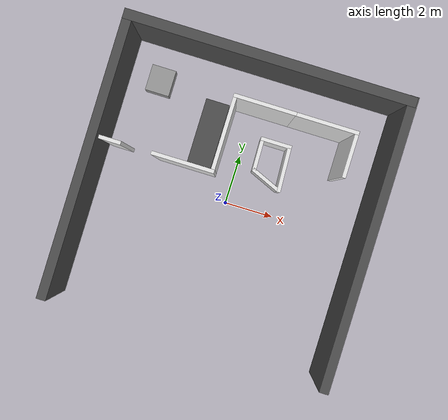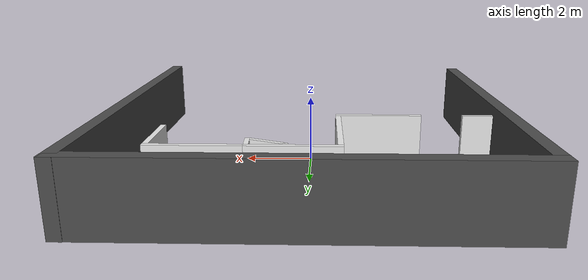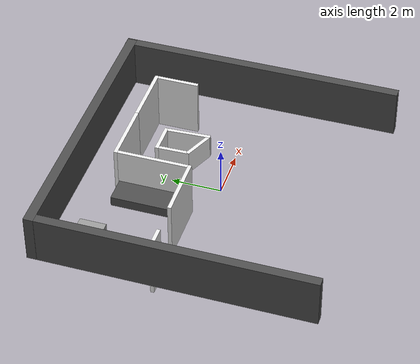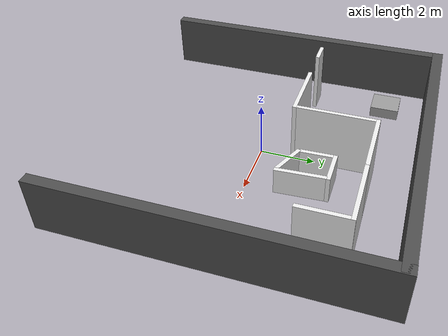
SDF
<sdf version="1.6">
 <world name="default">
  <model name="Obstacles">
   <link name="Wall_11">
    <pose>-2 1 0 0 -0 0</pose>
    <inertial>
     <mass>2.43558</mass>
     <inertia><ixx>8.44174</ixx><ixy>0</ixy><ixz>0</ixz><iyy>8.44174</iyy><iyz>0</iyz><izz>2.43558</izz></inertia>
    </inertial>
    <visual name="Wall_11_Visual">
     <pose>0 0 0.5 0 -0 0</pose>
     <geometry><box><size>2.5 0.15 2.43558</size></box></geometry>
     <material>
      <script><uri>file://media/materials/scripts/gazebo.material</uri><name>Gazebo/White</name></script>
      <ambient>1 1 1 1</ambient>
      <diffuse>1 1 1 1</diffuse>
      <specular>0 0 0 1</specular>
      <emissive>0 0 0 1</emissive>
      <shader type="vertex"><normal_map>__default__</normal_map></shader>
     </material>
     <meta><layer>0</layer></meta>
    </visual>
    <collision name="Wall_11_Collision">
     <pose>0 0 0.5 0 -0 0</pose>
     <geometry><box><size>2.5 0.15 2.43558</size></box></geometry>
     <surface>
      <friction>
       <ode><mu>1</mu><mu2>1</mu2><fdir1>0 0 0</fdir1><slip1>0</slip1><slip2>0</slip2></ode>
       <torsional>
        <coefficient>1</coefficient>
        <patch_radius>0</patch_radius>
        <surface_radius>0</surface_radius>
        <use_patch_radius>1</use_patch_radius>
        <ode><slip>0</slip></ode>
       </torsional>
      </friction>
      <bounce><restitution_coefficient>0</restitution_coefficient><threshold>1e+06</threshold></bounce>
      <contact>
       <collide_without_contact>0</collide_without_contact>
       <collide_without_contact_bitmask>1</collide_without_contact_bitmask>
       <collide_bitmask>1</collide_bitmask>
       <ode>
        <soft_cfm>0</soft_cfm>
        <soft_erp>0.2</soft_erp>
        <kp>1e+13</kp>
        <kd>1</kd>
        <max_vel>0.01</max_vel>
        <min_depth>0</min_depth>
       </ode>
       <bullet>
        <split_impulse>1</split_impulse>
        <split_impulse_penetration_threshold>-0.01</split_impulse_penetration_threshold>
        <soft_cfm>0</soft_cfm>
        <soft_erp>0.2</soft_erp>
        <kp>1e+13</kp>
        <kd>1</kd>
       </bullet>
      </contact>
     </surface>
    </collision>
   </link>
   <link name="Wall_11_clone">
    <pose>0.349144 4 0 0 -0 0</pose>
    <inertial>
     <mass>2.43558</mass>
     <inertia><ixx>8.44174</ixx><ixy>0</ixy><ixz>0</ixz><iyy>8.44174</iyy><iyz>0</iyz><izz>2.43558</izz></inertia>
    </inertial>
    <visual name="Wall_11_Visual">
     <pose>0 0 0.5 0 -0 0</pose>
     <geometry><box><size>2.5 0.15 2.43558</size></box></geometry>
     <material>
      <script><uri>file://media/materials/scripts/gazebo.material</uri><name>Gazebo/White</name></script>
      <ambient>1 1 1 1</ambient>
      <diffuse>1 1 1 1</diffuse>
      <specular>0 0 0 1</specular>
      <emissive>0 0 0 1</emissive>
      <shader type="vertex"><normal_map>__default__</normal_map></shader>
     </material>
     <meta><layer>0</layer></meta>
    </visual>
    <collision name="Wall_11_Collision">
     <pose>0 0 0.5 0 -0 0</pose>
     <geometry><box><size>2.5 0.15 2.43558</size></box></geometry>
     <surface>
      <friction>
       <ode><mu>1</mu><mu2>1</mu2><fdir1>0 0 0</fdir1><slip1>0</slip1><slip2>0</slip2></ode>
       <torsional>
        <coefficient>1</coefficient>
        <patch_radius>0</patch_radius>
        <surface_radius>0</surface_radius>
        <use_patch_radius>1</use_patch_radius>
        <ode><slip>0</slip></ode>
       </torsional>
      </friction>
      <bounce><restitution_coefficient>0</restitution_coefficient><threshold>1e+06</threshold></bounce>
      <contact>
       <collide_without_contact>0</collide_without_contact>
       <collide_without_contact_bitmask>1</collide_without_contact_bitmask>
       <collide_bitmask>1</collide_bitmask>
       <ode>
        <soft_cfm>0</soft_cfm>
        <soft_erp>0.2</soft_erp>
        <kp>1e+13</kp>
        <kd>1</kd>
        <max_vel>0.01</max_vel>
        <min_depth>0</min_depth>
       </ode>
       <bullet>
        <split_impulse>1</split_impulse>
        <split_impulse_penetration_threshold>-0.01</split_impulse_penetration_threshold>
        <soft_cfm>0</soft_cfm>
        <soft_erp>0.2</soft_erp>
        <kp>1e+13</kp>
        <kd>1</kd>
       </bullet>
      </contact>
     </surface>
    </collision>
   </link>
   <link name="Wall_11_clone_0">
    <pose>-0.826002 2.50053 0 0 0 -1.5708</pose>
    <inertial>
     <mass>2.78329</mass>
     <inertia><ixx>9.64467</ixx><ixy>0</ixy><ixz>0</ixz><iyy>10.0709</iyy><iyz>0</iyz><izz>3.20952</izz></inertia>
    </inertial>
    <visual name="Wall_11_Visual">
     <pose>0 0 0.5 0 -0 0</pose>
     <geometry><box><size>2.85731 0.15 2.43521</size></box></geometry>
     <material>
      <script><uri>file://media/materials/scripts/gazebo.material</uri><name>Gazebo/White</name></script>
      <ambient>1 1 1 1</ambient>
      <diffuse>1 1 1 1</diffuse>
      <specular>0 0 0 1</specular>
      <emissive>0 0 0 1</emissive>
      <shader type="vertex"><normal_map>__default__</normal_map></shader>
     </material>
     <meta><layer>0</layer></meta>
    </visual>
    <collision name="Wall_11_Collision">
     <pose>0 0 0.5 0 -0 0</pose>
     <geometry><box><size>2.85731 0.15 2.43521</size></box></geometry>
     <surface>
      <friction>
       <ode><mu>1</mu><mu2>1</mu2><fdir1>0 0 0</fdir1><slip1>0</slip1><slip2>0</slip2></ode>
       <torsional>
        <coefficient>1</coefficient>
        <patch_radius>0</patch_radius>
        <surface_radius>0</surface_radius>
        <use_patch_radius>1</use_patch_radius>
        <ode><slip>0</slip></ode>
       </torsional>
      </friction>
      <bounce><restitution_coefficient>0</restitution_coefficient><threshold>1e+06</threshold></bounce>
      <contact>
       <collide_without_contact>0</collide_without_contact>
       <collide_without_contact_bitmask>1</collide_without_contact_bitmask>
       <collide_bitmask>1</collide_bitmask>
       <ode>
        <soft_cfm>0</soft_cfm>
        <soft_erp>0.2</soft_erp>
        <kp>1e+13</kp>
        <kd>1</kd>
        <max_vel>0.01</max_vel>
        <min_depth>0</min_depth>
       </ode>
       <bullet>
        <split_impulse>1</split_impulse>
        <split_impulse_penetration_threshold>-0.01</split_impulse_penetration_threshold>
        <soft_cfm>0</soft_cfm>
        <soft_erp>0.2</soft_erp>
        <kp>1e+13</kp>
        <kd>1</kd>
       </bullet>
      </contact>
     </surface>
    </collision>
   </link>
   <link name="Wall_11_clone_0_clone">
    <pose>4 3.14359 0 0 0 -1.5708</pose>
    <inertial>
     <mass>1.80348</mass>
     <inertia><ixx>6.24942</ixx><ixy>0</ixy><ixz>0</ixz><iyy>5.84224</iyy><iyz>0</iyz><izz>1.3963</izz></inertia>
    </inertial>
    <visual name="Wall_11_Visual">
     <pose>0 0 0.5 0 -0 0</pose>
     <geometry><box><size>1.85143 0.15 2.43521</size></box></geometry>
     <material>
      <script><uri>file://media/materials/scripts/gazebo.material</uri><name>Gazebo/White</name></script>
      <ambient>1 1 1 1</ambient>
      <diffuse>1 1 1 1</diffuse>
      <specular>0 0 0 1</specular>
      <emissive>0 0 0 1</emissive>
      <shader type="vertex"><normal_map>__default__</normal_map></shader>
     </material>
     <meta><layer>0</layer></meta>
    </visual>
    <collision name="Wall_11_Collision">
     <pose>0 0 0.5 0 -0 0</pose>
     <geometry><box><size>1.85143 0.15 2.43521</size></box></geometry>
     <surface>
      <friction>
       <ode><mu>1</mu><mu2>1</mu2><fdir1>0 0 0</fdir1><slip1>0</slip1><slip2>0</slip2></ode>
       <torsional>
        <coefficient>1</coefficient>
        <patch_radius>0</patch_radius>
        <surface_radius>0</surface_radius>
        <use_patch_radius>1</use_patch_radius>
        <ode><slip>0</slip></ode>
       </torsional>
      </friction>
      <bounce><restitution_coefficient>0</restitution_coefficient><threshold>1e+06</threshold></bounce>
      <contact>
       <collide_without_contact>0</collide_without_contact>
       <collide_without_contact_bitmask>1</collide_without_contact_bitmask>
       <collide_bitmask>1</collide_bitmask>
       <ode>
        <soft_cfm>0</soft_cfm>
        <soft_erp>0.2</soft_erp>
        <kp>1e+13</kp>
        <kd>1</kd>
        <max_vel>0.01</max_vel>
        <min_depth>0</min_depth>
       </ode>
       <bullet>
        <split_impulse>1</split_impulse>
        <split_impulse_penetration_threshold>-0.01</split_impulse_penetration_threshold>
        <soft_cfm>0</soft_cfm>
        <soft_erp>0.2</soft_erp>
        <kp>1e+13</kp>
        <kd>1</kd>
       </bullet>
      </contact>
     </surface>
    </collision>
   </link>
   <link name="Wall_11_clone_1">
    <pose>-4.89998 1 0 0 -0 0</pose>
    <inertial>
     <mass>0.880522</mass>
     <inertia><ixx>3.0519</ixx><ixy>0</ixy><ixz>0</ixz><iyy>2.66918</iyy><iyz>0</iyz><izz>0.497803</izz></inertia>
    </inertial>
    <visual name="Wall_11_Visual">
     <pose>0 0 0.5 0 -0 0</pose>
     <geometry><box><size>0.903814 0.15 2.43558</size></box></geometry>
     <material>
      <script><uri>file://media/materials/scripts/gazebo.material</uri><name>Gazebo/White</name></script>
      <ambient>1 1 1 1</ambient>
      <diffuse>1 1 1 1</diffuse>
      <specular>0 0 0 1</specular>
      <emissive>0 0 0 1</emissive>
      <shader type="vertex"><normal_map>__default__</normal_map></shader>
     </material>
     <meta><layer>0</layer></meta>
    </visual>
    <collision name="Wall_11_Collision">
     <pose>0 0 0.5 0 -0 0</pose>
     <geometry><box><size>0.903814 0.15 2.43558</size></box></geometry>
     <surface>
      <friction>
       <ode><mu>1</mu><mu2>1</mu2><fdir1>0 0 0</fdir1><slip1>0</slip1><slip2>0</slip2></ode>
       <torsional>
        <coefficient>1</coefficient>
        <patch_radius>0</patch_radius>
        <surface_radius>0</surface_radius>
        <use_patch_radius>1</use_patch_radius>
        <ode><slip>0</slip></ode>
       </torsional>
      </friction>
      <bounce><restitution_coefficient>0</restitution_coefficient><threshold>1e+06</threshold></bounce>
      <contact>
       <collide_without_contact>0</collide_without_contact>
       <collide_without_contact_bitmask>1</collide_without_contact_bitmask>
       <collide_bitmask>1</collide_bitmask>
       <ode>
        <soft_cfm>0</soft_cfm>
        <soft_erp>0.2</soft_erp>
        <kp>1e+13</kp>
        <kd>1</kd>
        <max_vel>0.01</max_vel>
        <min_depth>0</min_depth>
       </ode>
       <bullet>
        <split_impulse>1</split_impulse>
        <split_impulse_penetration_threshold>-0.01</split_impulse_penetration_threshold>
        <soft_cfm>0</soft_cfm>
        <soft_erp>0.2</soft_erp>
        <kp>1e+13</kp>
        <kd>1</kd>
       </bullet>
      </contact>
     </surface>
    </collision>
   </link>
   <link name="Wall_11_clone_clone">
    <pose>2.82281 4 0 0 -0 0</pose>
    <inertial>
     <mass>2.43558</mass>
     <inertia><ixx>8.44174</ixx><ixy>0</ixy><ixz>0</ixz><iyy>8.44174</iyy><iyz>0</iyz><izz>2.43558</izz></inertia>
    </inertial>
    <visual name="Wall_11_Visual">
     <pose>0 0 0.5 0 -0 0</pose>
     <geometry><box><size>2.5 0.15 2.43558</size></box></geometry>
     <material>
      <script><uri>file://media/materials/scripts/gazebo.material</uri><name>Gazebo/White</name></script>
      <ambient>1 1 1 1</ambient>
      <diffuse>1 1 1 1</diffuse>
      <specular>0 0 0 1</specular>
      <emissive>0 0 0 1</emissive>
      <shader type="vertex"><normal_map>__default__</normal_map></shader>
     </material>
     <meta><layer>0</layer></meta>
    </visual>
    <collision name="Wall_11_Collision">
     <pose>0 0 0.5 0 -0 0</pose>
     <geometry><box><size>2.5 0.15 2.43558</size></box></geometry>
     <surface>
      <friction>
       <ode><mu>1</mu><mu2>1</mu2><fdir1>0 0 0</fdir1><slip1>0</slip1><slip2>0</slip2></ode>
       <torsional>
        <coefficient>1</coefficient>
        <patch_radius>0</patch_radius>
        <surface_radius>0</surface_radius>
        <use_patch_radius>1</use_patch_radius>
        <ode><slip>0</slip></ode>
       </torsional>
      </friction>
      <bounce><restitution_coefficient>0</restitution_coefficient><threshold>1e+06</threshold></bounce>
      <contact>
       <collide_without_contact>0</collide_without_contact>
       <collide_without_contact_bitmask>1</collide_without_contact_bitmask>
       <collide_bitmask>1</collide_bitmask>
       <ode>
        <soft_cfm>0</soft_cfm>
        <soft_erp>0.2</soft_erp>
        <kp>1e+13</kp>
        <kd>1</kd>
        <max_vel>0.01</max_vel>
        <min_depth>0</min_depth>
       </ode>
       <bullet>
        <split_impulse>1</split_impulse>
        <split_impulse_penetration_threshold>-0.01</split_impulse_penetration_threshold>
        <soft_cfm>0</soft_cfm>
        <soft_erp>0.2</soft_erp>
        <kp>1e+13</kp>
        <kd>1</kd>
       </bullet>
      </contact>
     </surface>
    </collision>
   </link>
   <link name="Wall_15">
    <pose>1.22585 2.84413 0 0 -0 0</pose>
    <inertial>
     <mass>1</mass>
     <inertia><ixx>1</ixx><ixy>0</ixy><ixz>0</ixz><iyy>1</iyy><iyz>0</iyz><izz>1</izz></inertia>
    </inertial>
    <visual name="Wall_15_Visual">
     <pose>0 0 0.5 0 -0 0</pose>
     <geometry><box><size>1.2678 0.15 1</size></box></geometry>
     <material>
      <script><uri>file://media/materials/scripts/gazebo.material</uri><name>Gazebo/White</name></script>
      <ambient>1 1 1 1</ambient>
      <diffuse>1 1 1 1</diffuse>
      <specular>0.2 0.2 0.2 1</specular>
      <emissive>0 0 0 1</emissive>
      <shader type="vertex"><normal_map>__default__</normal_map></shader>
     </material>
     <meta><layer>0</layer></meta>
    </visual>
    <collision name="Wall_15_Collision">
     <pose>0 0 0.5 0 -0 0</pose>
     <geometry><box><size>1.2678 0.15 1</size></box></geometry>
     <surface>
      <friction>
       <ode><mu>1</mu><mu2>1</mu2><fdir1>0 0 0</fdir1><slip1>0</slip1><slip2>0</slip2></ode>
       <torsional>
        <coefficient>1</coefficient>
        <patch_radius>0</patch_radius>
        <surface_radius>0</surface_radius>
        <use_patch_radius>1</use_patch_radius>
        <ode><slip>0</slip></ode>
       </torsional>
      </friction>
      <bounce><restitution_coefficient>0</restitution_coefficient><threshold>1e+06</threshold></bounce>
      <contact>
       <collide_without_contact>0</collide_without_contact>
       <collide_without_contact_bitmask>1</collide_without_contact_bitmask>
       <collide_bitmask>1</collide_bitmask>
       <ode>
        <soft_cfm>0</soft_cfm>
        <soft_erp>0.2</soft_erp>
        <kp>1e+13</kp>
        <kd>1</kd>
        <max_vel>0.01</max_vel>
        <min_depth>0</min_depth>
       </ode>
       <bullet>
        <split_impulse>1</split_impulse>
        <split_impulse_penetration_threshold>-0.01</split_impulse_penetration_threshold>
        <soft_cfm>0</soft_cfm>
        <soft_erp>0.2</soft_erp>
        <kp>1e+13</kp>
        <kd>1</kd>
       </bullet>
      </contact>
     </surface>
    </collision>
   </link>
   <link name="Wall_16">
    <pose>1.82764 1.90397 3.1e-05 0 0 -1.52005</pose>
    <inertial>
     <inertia>
      <ixx>1.79769e+308</ixx>
      <ixy>0</ixy>
      <ixz>0</ixz>
      <iyy>1.79769e+308</iyy>
      <iyz>0</iyz>
      <izz>1.79769e+308</izz>
     </inertia>
     <mass>0</mass>
    </inertial>
    <visual name="Wall_16_Visual">
     <pose>0 0 0.5 0 -0 0</pose>
     <geometry><box><size>1.7797 0.15 1</size></box></geometry>
     <material>
      <script><uri>file://media/materials/scripts/gazebo.material</uri><name>Gazebo/White</name></script>
      <ambient>1 1 1 1</ambient>
      <diffuse>1 1 1 1</diffuse>
      <specular>0.2 0.2 0.2 1</specular>
      <emissive>0 0 0 1</emissive>
      <shader type="vertex"><normal_map>__default__</normal_map></shader>
     </material>
     <meta><layer>0</layer></meta>
    </visual>
    <collision name="Wall_16_Collision">
     <pose>0 0 0.5 0 -0 0</pose>
     <geometry><box><size>1.7797 0.15 1</size></box></geometry>
     <surface>
      <friction>
       <ode><mu>1</mu><mu2>1</mu2><fdir1>0 0 0</fdir1><slip1>0</slip1><slip2>0</slip2></ode>
       <torsional>
        <coefficient>1</coefficient>
        <patch_radius>0</patch_radius>
        <surface_radius>0</surface_radius>
        <use_patch_radius>1</use_patch_radius>
        <ode><slip>0</slip></ode>
       </torsional>
      </friction>
      <bounce><restitution_coefficient>0</restitution_coefficient><threshold>1e+06</threshold></bounce>
      <contact>
       <collide_without_contact>0</collide_without_contact>
       <collide_without_contact_bitmask>1</collide_without_contact_bitmask>
       <collide_bitmask>1</collide_bitmask>
       <ode>
        <soft_cfm>0</soft_cfm>
        <soft_erp>0.2</soft_erp>
        <kp>1e+13</kp>
        <kd>1</kd>
        <max_vel>0.01</max_vel>
        <min_depth>0</min_depth>
       </ode>
       <bullet>
        <split_impulse>1</split_impulse>
        <split_impulse_penetration_threshold>-0.01</split_impulse_penetration_threshold>
        <soft_cfm>0</soft_cfm>
        <soft_erp>0.2</soft_erp>
        <kp>1e+13</kp>
        <kd>1</kd>
       </bullet>
      </contact>
     </surface>
    </collision>
   </link>
   <link name="Wall_17">
    <pose>1.24744 1.3314 0 0 -0 2.73868</pose>
    <inertial>
     <mass>1.0293</mass>
     <inertia><ixx>1.0293</ixx><ixy>0</ixy><ixz>0</ixz><iyy>1.0599</iyy><iyz>0</iyz><izz>1.0599</izz></inertia>
    </inertial>
    <visual name="ModelPreview_1::Wall_17::visual_1">
     <pose>0 0 0.5 0 -0 0</pose>
     <geometry><box><size>1.28663 0.15 1</size></box></geometry>
     <material>
      <script><uri>file://media/materials/scripts/gazebo.material</uri><name>Gazebo/White</name></script>
      <ambient>1 1 1 1</ambient>
      <diffuse>1 1 1 1</diffuse>
      <specular>0.2 0.2 0.2 1</specular>
      <emissive>0 0 0 1</emissive>
      <shader type="vertex"><normal_map>__default__</normal_map></shader>
     </material>
     <meta><layer>0</layer></meta>
    </visual>
    <collision name="Wall_17_Collision">
     <pose>0 0 0.5 0 -0 0</pose>
     <geometry><box><size>1.28663 0.15 1</size></box></geometry>
     <surface>
      <friction>
       <ode><mu>1</mu><mu2>1</mu2><fdir1>0 0 0</fdir1><slip1>0</slip1><slip2>0</slip2></ode>
       <torsional>
        <coefficient>1</coefficient>
        <patch_radius>0</patch_radius>
        <surface_radius>0</surface_radius>
        <use_patch_radius>1</use_patch_radius>
        <ode><slip>0</slip></ode>
       </torsional>
      </friction>
      <bounce><restitution_coefficient>0</restitution_coefficient><threshold>1e+06</threshold></bounce>
      <contact>
       <collide_without_contact>0</collide_without_contact>
       <collide_without_contact_bitmask>1</collide_without_contact_bitmask>
       <collide_bitmask>1</collide_bitmask>
       <ode>
        <soft_cfm>0</soft_cfm>
        <soft_erp>0.2</soft_erp>
        <kp>1e+13</kp>
        <kd>1</kd>
        <max_vel>0.01</max_vel>
        <min_depth>0</min_depth>
       </ode>
       <bullet>
        <split_impulse>1</split_impulse>
        <split_impulse_penetration_threshold>-0.01</split_impulse_penetration_threshold>
        <soft_cfm>0</soft_cfm>
        <soft_erp>0.2</soft_erp>
        <kp>1e+13</kp>
        <kd>1</kd>
       </bullet>
      </contact>
     </surface>
    </collision>
   </link>
   <link name="Wall_18">
    <pose>0.683458 2.14742 0 0 -0 1.59577</pose>
    <inertial>
     <mass>1.29658</mass>
     <inertia><ixx>1.29658</ixx><ixy>0</ixy><ixz>0</ixz><iyy>1.73814</iyy><iyz>0</iyz><izz>1.73814</izz></inertia>
    </inertial>
    <visual name="Wall_18_Visual">
     <pose>0 0 0.5 0 -0 0</pose>
     <geometry><box><size>1.25121 0.15 1</size></box></geometry>
     <material>
      <script><uri>file://media/materials/scripts/gazebo.material</uri><name>Gazebo/White</name></script>
      <ambient>1 1 1 1</ambient>
      <diffuse>1 1 1 1</diffuse>
      <specular>0.2 0.2 0.2 1</specular>
      <emissive>0 0 0 1</emissive>
      <shader type="vertex"><normal_map>__default__</normal_map></shader>
     </material>
     <meta><layer>0</layer></meta>
    </visual>
    <collision name="Wall_18_Collision">
     <pose>0 0 0.5 0 -0 0</pose>
     <geometry><box><size>1.25121 0.15 1</size></box></geometry>
     <surface>
      <friction>
       <ode><mu>1</mu><mu2>1</mu2><fdir1>0 0 0</fdir1><slip1>0</slip1><slip2>0</slip2></ode>
       <torsional>
        <coefficient>1</coefficient>
        <patch_radius>0</patch_radius>
        <surface_radius>0</surface_radius>
        <use_patch_radius>1</use_patch_radius>
        <ode><slip>0</slip></ode>
       </torsional>
      </friction>
      <bounce><restitution_coefficient>0</restitution_coefficient><threshold>1e+06</threshold></bounce>
      <contact>
       <collide_without_contact>0</collide_without_contact>
       <collide_without_contact_bitmask>1</collide_without_contact_bitmask>
       <collide_bitmask>1</collide_bitmask>
       <ode>
        <soft_cfm>0</soft_cfm>
        <soft_erp>0.2</soft_erp>
        <kp>1e+13</kp>
        <kd>1</kd>
        <max_vel>0.01</max_vel>
        <min_depth>0</min_depth>
       </ode>
       <bullet>
        <split_impulse>1</split_impulse>
        <split_impulse_penetration_threshold>-0.01</split_impulse_penetration_threshold>
        <soft_cfm>0</soft_cfm>
        <soft_erp>0.2</soft_erp>
        <kp>1e+13</kp>
        <kd>1</kd>
       </bullet>
      </contact>
     </surface>
    </collision>
   </link>
   <link name="Wall_6">
    <pose>0.0104 5.64778 0 0 -0 0</pose>
    <inertial>
     <inertia>
      <ixx>1.79769e+308</ixx>
      <ixy>0</ixy>
      <ixz>0</ixz>
      <iyy>1.79769e+308</iyy>
      <iyz>0</iyz>
      <izz>1.79769e+308</izz>
     </inertia>
     <mass>0</mass>
    </inertial>
    <visual name="Wall_6_Visual">
     <pose>0 0 1 0 -0 0</pose>
     <geometry><box><size>11.4265 0.395374 2</size></box></geometry>
     <material>
      <script><uri>file://media/materials/scripts/gazebo.material</uri><name>Gazebo/DarkGrey</name></script>
      <ambient>1 1 1 1</ambient>
      <diffuse>1 1 1 1</diffuse>
      <specular>0.2 0.2 0.2 1</specular>
      <emissive>0 0 0 1</emissive>
      <shader type="vertex"><normal_map>__default__</normal_map></shader>
     </material>
     <meta><layer>0</layer></meta>
    </visual>
    <collision name="Wall_6_Collision">
     <pose>0 0 1 0 -0 0</pose>
     <geometry><box><size>11.4265 0.395374 2</size></box></geometry>
     <surface>
      <friction>
       <ode><mu>1</mu><mu2>1</mu2><fdir1>0 0 0</fdir1><slip1>0</slip1><slip2>0</slip2></ode>
       <torsional>
        <coefficient>1</coefficient>
        <patch_radius>0</patch_radius>
        <surface_radius>0</surface_radius>
        <use_patch_radius>1</use_patch_radius>
        <ode><slip>0</slip></ode>
       </torsional>
      </friction>
      <bounce><restitution_coefficient>0</restitution_coefficient><threshold>1e+06</threshold></bounce>
      <contact>
       <collide_without_contact>0</collide_without_contact>
       <collide_without_contact_bitmask>1</collide_without_contact_bitmask>
       <collide_bitmask>1</collide_bitmask>
       <ode>
        <soft_cfm>0</soft_cfm>
        <soft_erp>0.2</soft_erp>
        <kp>1e+13</kp>
        <kd>1</kd>
        <max_vel>0.01</max_vel>
        <min_depth>0</min_depth>
       </ode>
       <bullet>
        <split_impulse>1</split_impulse>
        <split_impulse_penetration_threshold>-0.01</split_impulse_penetration_threshold>
        <soft_cfm>0</soft_cfm>
        <soft_erp>0.2</soft_erp>
        <kp>1e+13</kp>
        <kd>1</kd>
       </bullet>
      </contact>
     </surface>
    </collision>
   </link>
   <link name="Wall_9">
    <pose>-5.51493 0.039999 0 0 -0 1.5708</pose>
    <inertial>
     <mass>2.47037</mass>
     <inertia><ixx>8.77318</ixx><ixy>0</ixy><ixz>0</ixz><iyy>2.47037</iyy><iyz>0</iyz><izz>8.77318</izz></inertia>
    </inertial>
    <visual name="Wall_9_Visual">
     <pose>0 0 1 0 -0 0</pose>
     <geometry><box><size>11 0.370554 2</size></box></geometry>
     <material>
      <script><uri>file://media/materials/scripts/gazebo.material</uri><name>Gazebo/DarkGrey</name></script>
      <ambient>1 1 1 1</ambient>
      <diffuse>1 1 1 1</diffuse>
      <specular>0.2 0.2 0.2 1</specular>
      <emissive>0 0 0 1</emissive>
      <shader type="vertex"><normal_map>__default__</normal_map></shader>
     </material>
     <meta><layer>0</layer></meta>
    </visual>
    <collision name="Wall_9_Collision">
     <pose>0 0 1 0 -0 0</pose>
     <geometry><box><size>11 0.370554 2</size></box></geometry>
     <surface>
      <friction>
       <ode><mu>1</mu><mu2>1</mu2><fdir1>0 0 0</fdir1><slip1>0</slip1><slip2>0</slip2></ode>
       <torsional>
        <coefficient>1</coefficient>
        <patch_radius>0</patch_radius>
        <surface_radius>0</surface_radius>
        <use_patch_radius>1</use_patch_radius>
        <ode><slip>0</slip></ode>
       </torsional>
      </friction>
      <bounce><restitution_coefficient>0</restitution_coefficient><threshold>1e+06</threshold></bounce>
      <contact>
       <collide_without_contact>0</collide_without_contact>
       <collide_without_contact_bitmask>1</collide_without_contact_bitmask>
       <collide_bitmask>1</collide_bitmask>
       <ode>
        <soft_cfm>0</soft_cfm>
        <soft_erp>0.2</soft_erp>
        <kp>1e+13</kp>
        <kd>1</kd>
        <max_vel>0.01</max_vel>
        <min_depth>0</min_depth>
       </ode>
       <bullet>
        <split_impulse>1</split_impulse>
        <split_impulse_penetration_threshold>-0.01</split_impulse_penetration_threshold>
        <soft_cfm>0</soft_cfm>
        <soft_erp>0.2</soft_erp>
        <kp>1e+13</kp>
        <kd>1</kd>
       </bullet>
      </contact>
     </surface>
    </collision>
   </link>
   <link name="Wall_9_clone">
    <pose>5.57936 0.068809 0 0 -0 1.5708</pose>
    <inertial>
     <mass>2.59772</mass>
     <inertia><ixx>9.22544</ixx><ixy>0</ixy><ixz>0</ixz><iyy>2.73508</iyy><iyz>0</iyz><izz>9.3628</izz></inertia>
    </inertial>
    <visual name="Wall_9_Visual">
     <pose>0 0 1 0 -0 0</pose>
     <geometry><box><size>11.5671 0.370554 2</size></box></geometry>
     <material>
      <script><uri>file://media/materials/scripts/gazebo.material</uri><name>Gazebo/DarkGrey</name></script>
      <ambient>1 1 1 1</ambient>
      <diffuse>1 1 1 1</diffuse>
      <specular>0.2 0.2 0.2 1</specular>
      <emissive>0 0 0 1</emissive>
      <shader type="vertex"><normal_map>__default__</normal_map></shader>
     </material>
     <meta><layer>0</layer></meta>
    </visual>
    <collision name="Wall_9_Collision">
     <pose>0 0 1 0 -0 0</pose>
     <geometry><box><size>11.5671 0.370554 2</size></box></geometry>
     <surface>
      <friction>
       <ode><mu>1</mu><mu2>1</mu2><fdir1>0 0 0</fdir1><slip1>0</slip1><slip2>0</slip2></ode>
       <torsional>
        <coefficient>1</coefficient>
        <patch_radius>0</patch_radius>
        <surface_radius>0</surface_radius>
        <use_patch_radius>1</use_patch_radius>
        <ode><slip>0</slip></ode>
       </torsional>
      </friction>
      <bounce><restitution_coefficient>0</restitution_coefficient><threshold>1e+06</threshold></bounce>
      <contact>
       <collide_without_contact>0</collide_without_contact>
       <collide_without_contact_bitmask>1</collide_without_contact_bitmask>
       <collide_bitmask>1</collide_bitmask>
       <ode>
        <soft_cfm>0</soft_cfm>
        <soft_erp>0.2</soft_erp>
        <kp>1e+13</kp>
        <kd>1</kd>
        <max_vel>0.01</max_vel>
        <min_depth>0</min_depth>
       </ode>
       <bullet>
        <split_impulse>1</split_impulse>
        <split_impulse_penetration_threshold>-0.01</split_impulse_penetration_threshold>
        <soft_cfm>0</soft_cfm>
        <soft_erp>0.2</soft_erp>
        <kp>1e+13</kp>
        <kd>1</kd>
       </bullet>
      </contact>
     </surface>
    </collision>
   </link>
   <link name="link_0">
    <pose>-1.50063 2.50831 0.147942 0 -0 0</pose>
    <inertial>
     <mass>1.09506</mass>
     <inertia>
      <ixx>0.67589</ixx>
      <ixy>0</ixy>
      <ixz>0</ixz>
      <iyy>0.106368</iyy>
      <iyz>0</iyz>
      <izz>0.752033</izz>
     </inertia>
    </inertial>
    <visual name="visual">
     <geometry><box><size>1 2.6909 0.406932</size></box></geometry>
     <material>
      <lighting>1</lighting>
      <script><uri>file://media/materials/scripts/gazebo.material</uri><name>Gazebo/DarkGrey</name></script>
      <ambient>0.3 0.3 0.3 1</ambient>
      <diffuse>0.7 0.7 0.7 1</diffuse>
      <specular>0.01 0.01 0.01 1</specular>
      <emissive>0 0 0 1</emissive>
      <shader type="vertex"><normal_map>__default__</normal_map></shader>
     </material>
    </visual>
    <collision name="collision">
     <geometry><box><size>1 2.6909 0.406932</size></box></geometry>
     <surface>
      <friction>
       <ode><mu>1</mu><mu2>1</mu2><fdir1>0 0 0</fdir1><slip1>0</slip1><slip2>0</slip2></ode>
       <torsional>
        <coefficient>1</coefficient>
        <patch_radius>0</patch_radius>
        <surface_radius>0</surface_radius>
        <use_patch_radius>1</use_patch_radius>
        <ode><slip>0</slip></ode>
       </torsional>
      </friction>
      <bounce><restitution_coefficient>0</restitution_coefficient><threshold>1e+06</threshold></bounce>
      <contact>
       <collide_without_contact>0</collide_without_contact>
       <collide_without_contact_bitmask>1</collide_without_contact_bitmask>
       <collide_bitmask>1</collide_bitmask>
       <ode>
        <soft_cfm>0</soft_cfm>
        <soft_erp>0.2</soft_erp>
        <kp>1e+13</kp>
        <kd>1</kd>
        <max_vel>0.01</max_vel>
        <min_depth>0</min_depth>
       </ode>
       <bullet>
        <split_impulse>1</split_impulse>
        <split_impulse_penetration_threshold>-0.01</split_impulse_penetration_threshold>
        <soft_cfm>0</soft_cfm>
        <soft_erp>0.2</soft_erp>
        <kp>1e+13</kp>
        <kd>1</kd>
       </bullet>
      </contact>
     </surface>
    </collision>
   </link>
   <link name="link_0_clone_0_clone">
    <pose>-4 4 0.192269 0 -0 0</pose>
    <inertial>
     <mass>0.43716</mass>
     <inertia>
      <ixx>0.0480732</ixx>
      <ixy>0</ixy>
      <ixz>0</ixz>
      <iyy>0.0424633</iyy>
      <iyz>0</iyz>
      <izz>0.0784703</izz>
     </inertia>
    </inertial>
    <visual name="visual">
     <geometry><box><size>1 1.07424 0.406932</size></box></geometry>
     <material>
      <lighting>1</lighting>
      <script><uri>file://media/materials/scripts/gazebo.material</uri><name>Gazebo/Grey</name></script>
      <ambient>0.3 0.3 0.3 1</ambient>
      <diffuse>0.7 0.7 0.7 1</diffuse>
      <specular>0.01 0.01 0.01 1</specular>
      <emissive>0 0 0 1</emissive>
      <shader type="pixel"/>
     </material>
    </visual>
    <collision name="collision">
     <geometry><box><size>1 1.07424 0.406932</size></box></geometry>
     <surface>
      <friction>
       <ode><mu>1</mu><mu2>1</mu2><fdir1>0 0 0</fdir1><slip1>0</slip1><slip2>0</slip2></ode>
       <torsional>
        <coefficient>1</coefficient>
        <patch_radius>0</patch_radius>
        <surface_radius>0</surface_radius>
        <use_patch_radius>1</use_patch_radius>
        <ode><slip>0</slip></ode>
       </torsional>
      </friction>
      <bounce><restitution_coefficient>0</restitution_coefficient><threshold>1e+06</threshold></bounce>
      <contact>
       <collide_without_contact>0</collide_without_contact>
       <collide_without_contact_bitmask>1</collide_without_contact_bitmask>
       <collide_bitmask>1</collide_bitmask>
       <ode>
        <soft_cfm>0</soft_cfm>
        <soft_erp>0.2</soft_erp>
        <kp>1e+13</kp>
        <kd>1</kd>
        <max_vel>0.01</max_vel>
        <min_depth>0</min_depth>
       </ode>
       <bullet>
        <split_impulse>1</split_impulse>
        <split_impulse_penetration_threshold>-0.01</split_impulse_penetration_threshold>
        <soft_cfm>0</soft_cfm>
        <soft_erp>0.2</soft_erp>
        <kp>1e+13</kp>
        <kd>1</kd>
       </bullet>
      </contact>
     </surface>
    </collision>
   </link>
   <static>1</static>
  </model>
 </world>
</sdf>
